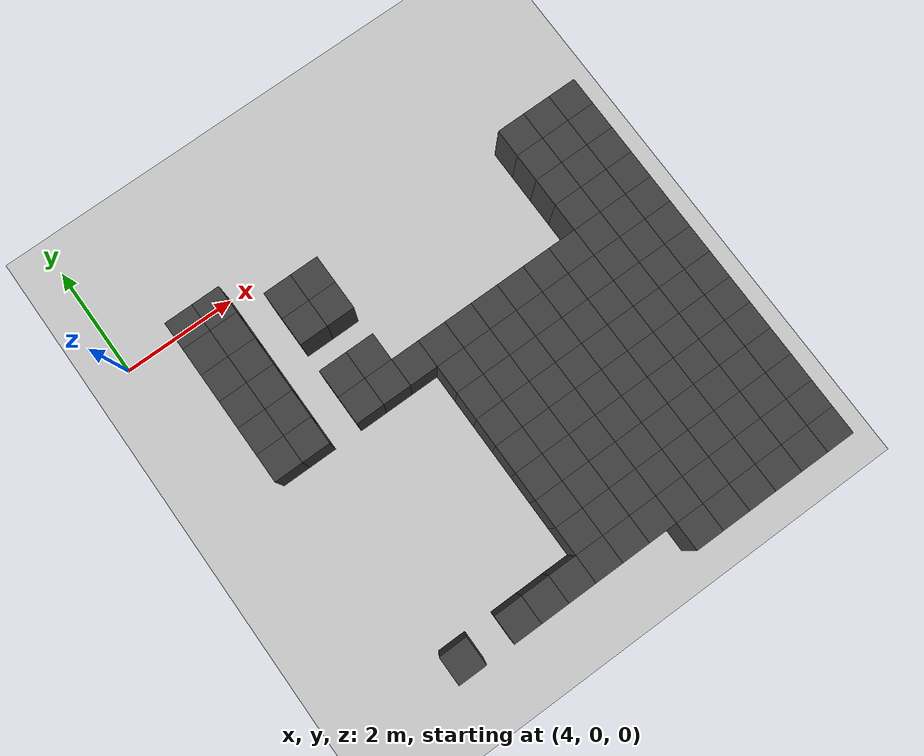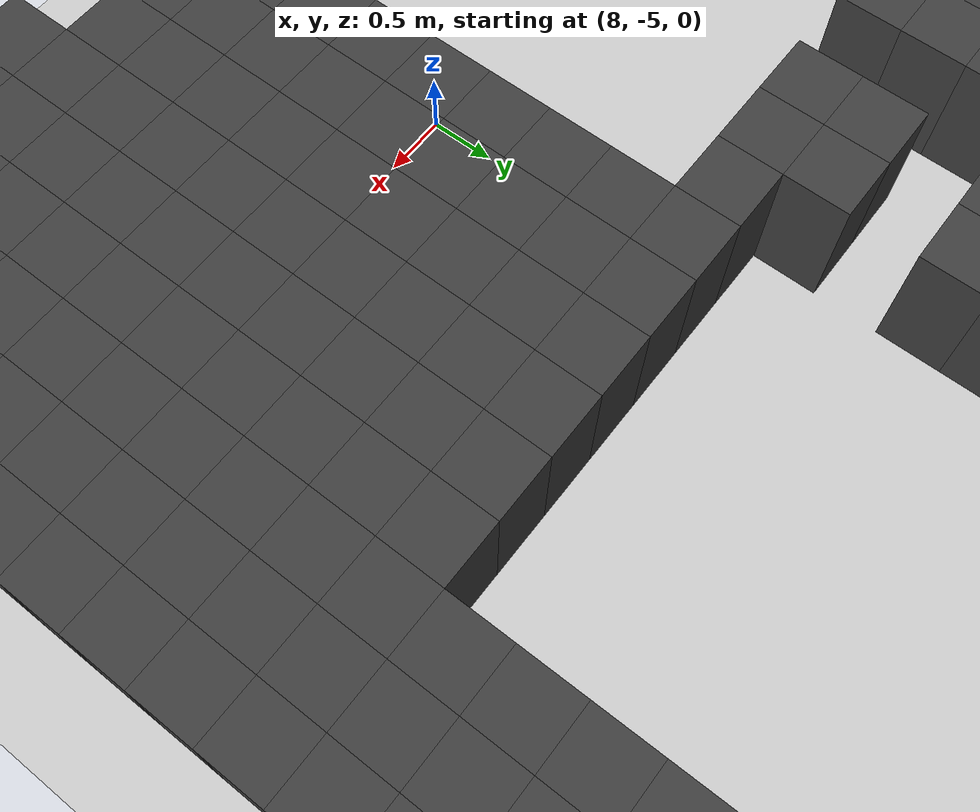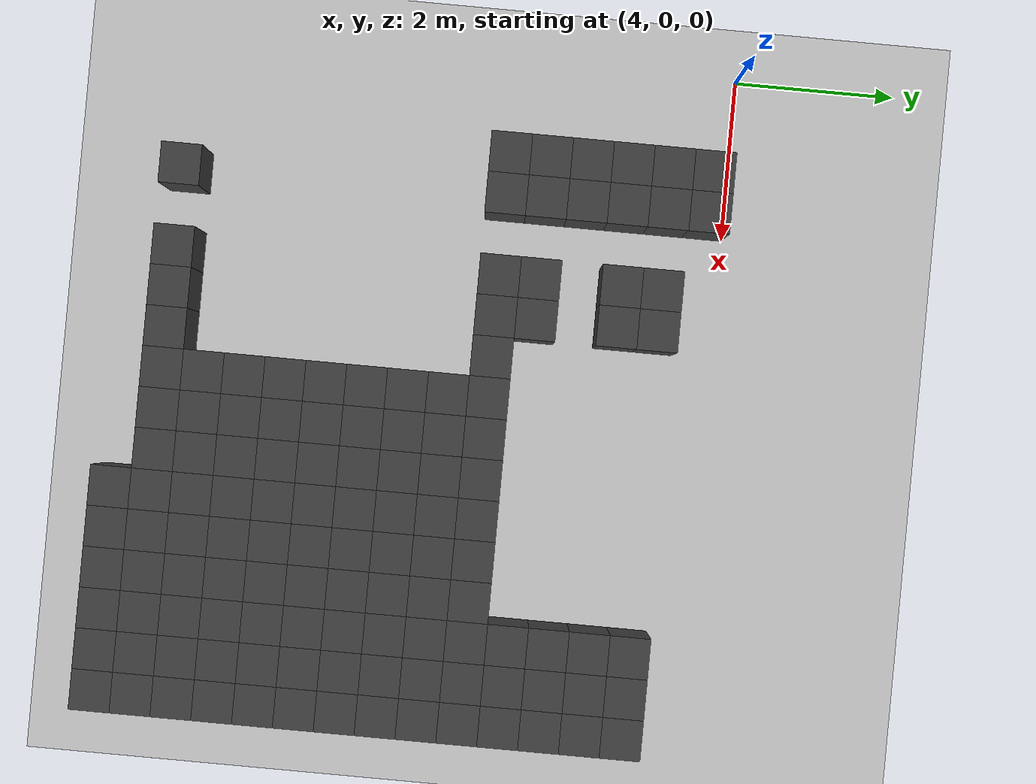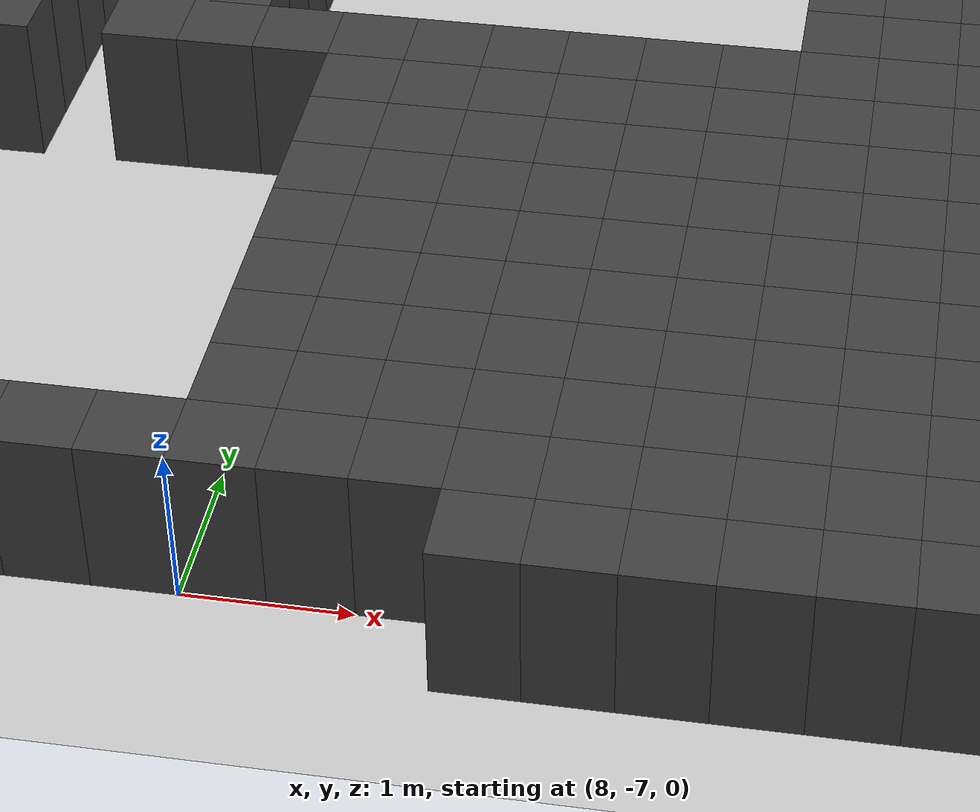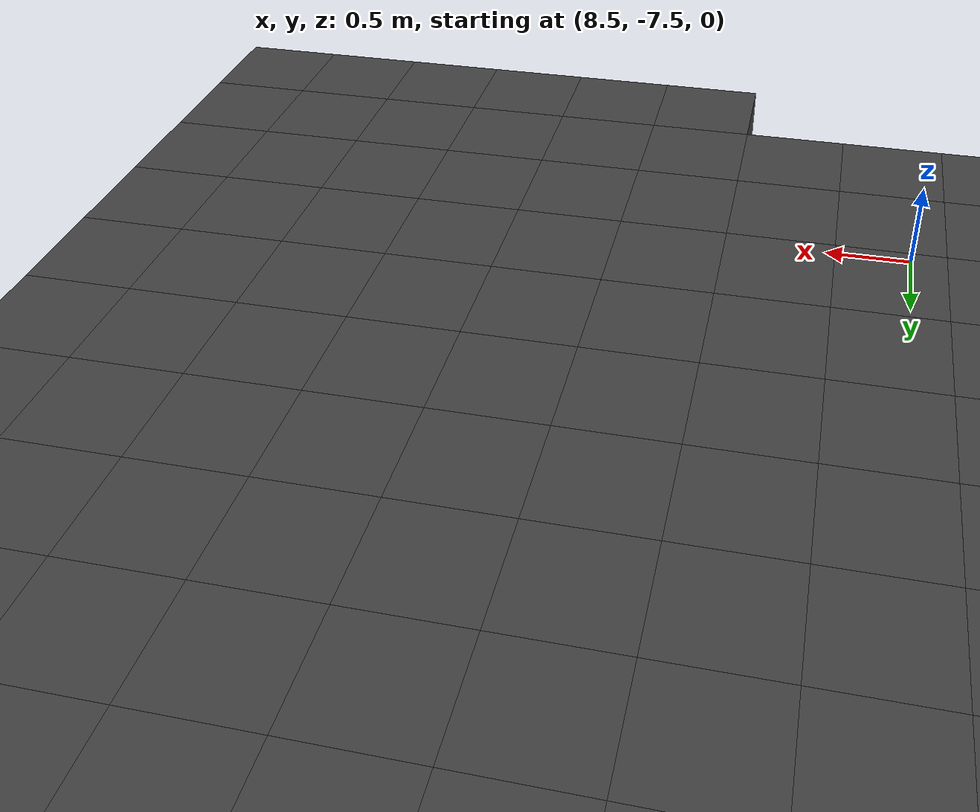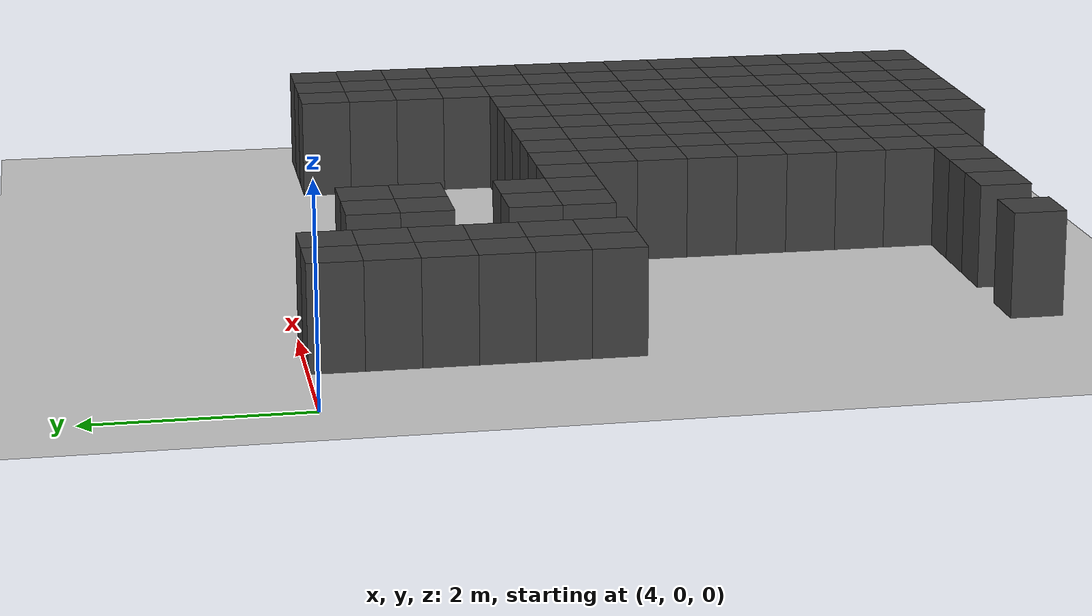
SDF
<sdf version="1.7">
 <world name="map_13820">
  <model name="ground_plane">
   <static>true</static>
   <link name="link">
    <collision name="collision">
     <geometry><plane><normal>0 0 1</normal><size>200 200</size></plane></geometry>
    </collision>
    <visual name="visual">
     <geometry><plane><normal>0 0 1</normal><size>200 200</size></plane></geometry>
     <material><ambient>0.8 0.8 0.8 1</ambient><diffuse>0.8 0.8 0.8 1</diffuse></material>
    </visual>
   </link>
  </model>
  <model name="maze_environment">
   <static>true</static>
   <link name="wall_906">
    <pose>5.250 -0.250 0.500 0 0 0</pose>
    <collision name="col"><geometry><box><size>0.5 0.5 1.0</size></box></geometry></collision>
    <visual name="vis">
     <geometry><box><size>0.5 0.5 1.0</size></box></geometry>
     <material><ambient>0.15 0.15 0.15 1</ambient><diffuse>0.25 0.25 0.25 1</diffuse></material>
    </visual>
   </link>
   <link name="wall_907">
    <pose>5.750 -0.250 0.500 0 0 0</pose>
    <collision name="col"><geometry><box><size>0.5 0.5 1.0</size></box></geometry></collision>
    <visual name="vis">
     <geometry><box><size>0.5 0.5 1.0</size></box></geometry>
     <material><ambient>0.15 0.15 0.15 1</ambient><diffuse>0.25 0.25 0.25 1</diffuse></material>
    </visual>
   </link>
   <link name="wall_946">
    <pose>5.250 -0.750 0.500 0 0 0</pose>
    <collision name="col"><geometry><box><size>0.5 0.5 1.0</size></box></geometry></collision>
    <visual name="vis">
     <geometry><box><size>0.5 0.5 1.0</size></box></geometry>
     <material><ambient>0.15 0.15 0.15 1</ambient><diffuse>0.25 0.25 0.25 1</diffuse></material>
    </visual>
   </link>
   <link name="wall_947">
    <pose>5.750 -0.750 0.500 0 0 0</pose>
    <collision name="col"><geometry><box><size>0.5 0.5 1.0</size></box></geometry></collision>
    <visual name="vis">
     <geometry><box><size>0.5 0.5 1.0</size></box></geometry>
     <material><ambient>0.15 0.15 0.15 1</ambient><diffuse>0.25 0.25 0.25 1</diffuse></material>
    </visual>
   </link>
   <link name="wall_948">
    <pose>6.750 -0.750 0.500 0 0 0</pose>
    <collision name="col"><geometry><box><size>0.5 0.5 1.0</size></box></geometry></collision>
    <visual name="vis">
     <geometry><box><size>0.5 0.5 1.0</size></box></geometry>
     <material><ambient>0.15 0.15 0.15 1</ambient><diffuse>0.25 0.25 0.25 1</diffuse></material>
    </visual>
   </link>
   <link name="wall_949">
    <pose>7.250 -0.750 0.500 0 0 0</pose>
    <collision name="col"><geometry><box><size>0.5 0.5 1.0</size></box></geometry></collision>
    <visual name="vis">
     <geometry><box><size>0.5 0.5 1.0</size></box></geometry>
     <material><ambient>0.15 0.15 0.15 1</ambient><diffuse>0.25 0.25 0.25 1</diffuse></material>
    </visual>
   </link>
   <link name="wall_950">
    <pose>11.250 -0.750 0.500 0 0 0</pose>
    <collision name="col"><geometry><box><size>0.5 0.5 1.0</size></box></geometry></collision>
    <visual name="vis">
     <geometry><box><size>0.5 0.5 1.0</size></box></geometry>
     <material><ambient>0.15 0.15 0.15 1</ambient><diffuse>0.25 0.25 0.25 1</diffuse></material>
    </visual>
   </link>
   <link name="wall_951">
    <pose>11.750 -0.750 0.500 0 0 0</pose>
    <collision name="col"><geometry><box><size>0.5 0.5 1.0</size></box></geometry></collision>
    <visual name="vis">
     <geometry><box><size>0.5 0.5 1.0</size></box></geometry>
     <material><ambient>0.15 0.15 0.15 1</ambient><diffuse>0.25 0.25 0.25 1</diffuse></material>
    </visual>
   </link>
   <link name="wall_952">
    <pose>12.250 -0.750 0.500 0 0 0</pose>
    <collision name="col"><geometry><box><size>0.5 0.5 1.0</size></box></geometry></collision>
    <visual name="vis">
     <geometry><box><size>0.5 0.5 1.0</size></box></geometry>
     <material><ambient>0.15 0.15 0.15 1</ambient><diffuse>0.25 0.25 0.25 1</diffuse></material>
    </visual>
   </link>
   <link name="wall_979">
    <pose>5.250 -1.250 0.500 0 0 0</pose>
    <collision name="col"><geometry><box><size>0.5 0.5 1.0</size></box></geometry></collision>
    <visual name="vis">
     <geometry><box><size>0.5 0.5 1.0</size></box></geometry>
     <material><ambient>0.15 0.15 0.15 1</ambient><diffuse>0.25 0.25 0.25 1</diffuse></material>
    </visual>
   </link>
   <link name="wall_980">
    <pose>5.750 -1.250 0.500 0 0 0</pose>
    <collision name="col"><geometry><box><size>0.5 0.5 1.0</size></box></geometry></collision>
    <visual name="vis">
     <geometry><box><size>0.5 0.5 1.0</size></box></geometry>
     <material><ambient>0.15 0.15 0.15 1</ambient><diffuse>0.25 0.25 0.25 1</diffuse></material>
    </visual>
   </link>
   <link name="wall_981">
    <pose>6.750 -1.250 0.500 0 0 0</pose>
    <collision name="col"><geometry><box><size>0.5 0.5 1.0</size></box></geometry></collision>
    <visual name="vis">
     <geometry><box><size>0.5 0.5 1.0</size></box></geometry>
     <material><ambient>0.15 0.15 0.15 1</ambient><diffuse>0.25 0.25 0.25 1</diffuse></material>
    </visual>
   </link>
   <link name="wall_982">
    <pose>7.250 -1.250 0.500 0 0 0</pose>
    <collision name="col"><geometry><box><size>0.5 0.5 1.0</size></box></geometry></collision>
    <visual name="vis">
     <geometry><box><size>0.5 0.5 1.0</size></box></geometry>
     <material><ambient>0.15 0.15 0.15 1</ambient><diffuse>0.25 0.25 0.25 1</diffuse></material>
    </visual>
   </link>
   <link name="wall_983">
    <pose>11.250 -1.250 0.500 0 0 0</pose>
    <collision name="col"><geometry><box><size>0.5 0.5 1.0</size></box></geometry></collision>
    <visual name="vis">
     <geometry><box><size>0.5 0.5 1.0</size></box></geometry>
     <material><ambient>0.15 0.15 0.15 1</ambient><diffuse>0.25 0.25 0.25 1</diffuse></material>
    </visual>
   </link>
   <link name="wall_984">
    <pose>11.750 -1.250 0.500 0 0 0</pose>
    <collision name="col"><geometry><box><size>0.5 0.5 1.0</size></box></geometry></collision>
    <visual name="vis">
     <geometry><box><size>0.5 0.5 1.0</size></box></geometry>
     <material><ambient>0.15 0.15 0.15 1</ambient><diffuse>0.25 0.25 0.25 1</diffuse></material>
    </visual>
   </link>
   <link name="wall_985">
    <pose>12.250 -1.250 0.500 0 0 0</pose>
    <collision name="col"><geometry><box><size>0.5 0.5 1.0</size></box></geometry></collision>
    <visual name="vis">
     <geometry><box><size>0.5 0.5 1.0</size></box></geometry>
     <material><ambient>0.15 0.15 0.15 1</ambient><diffuse>0.25 0.25 0.25 1</diffuse></material>
    </visual>
   </link>
   <link name="wall_1005">
    <pose>5.250 -1.750 0.500 0 0 0</pose>
    <collision name="col"><geometry><box><size>0.5 0.5 1.0</size></box></geometry></collision>
    <visual name="vis">
     <geometry><box><size>0.5 0.5 1.0</size></box></geometry>
     <material><ambient>0.15 0.15 0.15 1</ambient><diffuse>0.25 0.25 0.25 1</diffuse></material>
    </visual>
   </link>
   <link name="wall_1006">
    <pose>5.750 -1.750 0.500 0 0 0</pose>
    <collision name="col"><geometry><box><size>0.5 0.5 1.0</size></box></geometry></collision>
    <visual name="vis">
     <geometry><box><size>0.5 0.5 1.0</size></box></geometry>
     <material><ambient>0.15 0.15 0.15 1</ambient><diffuse>0.25 0.25 0.25 1</diffuse></material>
    </visual>
   </link>
   <link name="wall_1007">
    <pose>11.250 -1.750 0.500 0 0 0</pose>
    <collision name="col"><geometry><box><size>0.5 0.5 1.0</size></box></geometry></collision>
    <visual name="vis">
     <geometry><box><size>0.5 0.5 1.0</size></box></geometry>
     <material><ambient>0.15 0.15 0.15 1</ambient><diffuse>0.25 0.25 0.25 1</diffuse></material>
    </visual>
   </link>
   <link name="wall_1008">
    <pose>11.750 -1.750 0.500 0 0 0</pose>
    <collision name="col"><geometry><box><size>0.5 0.5 1.0</size></box></geometry></collision>
    <visual name="vis">
     <geometry><box><size>0.5 0.5 1.0</size></box></geometry>
     <material><ambient>0.15 0.15 0.15 1</ambient><diffuse>0.25 0.25 0.25 1</diffuse></material>
    </visual>
   </link>
   <link name="wall_1009">
    <pose>12.250 -1.750 0.500 0 0 0</pose>
    <collision name="col"><geometry><box><size>0.5 0.5 1.0</size></box></geometry></collision>
    <visual name="vis">
     <geometry><box><size>0.5 0.5 1.0</size></box></geometry>
     <material><ambient>0.15 0.15 0.15 1</ambient><diffuse>0.25 0.25 0.25 1</diffuse></material>
    </visual>
   </link>
   <link name="wall_1034">
    <pose>5.250 -2.250 0.500 0 0 0</pose>
    <collision name="col"><geometry><box><size>0.5 0.5 1.0</size></box></geometry></collision>
    <visual name="vis">
     <geometry><box><size>0.5 0.5 1.0</size></box></geometry>
     <material><ambient>0.15 0.15 0.15 1</ambient><diffuse>0.25 0.25 0.25 1</diffuse></material>
    </visual>
   </link>
   <link name="wall_1035">
    <pose>5.750 -2.250 0.500 0 0 0</pose>
    <collision name="col"><geometry><box><size>0.5 0.5 1.0</size></box></geometry></collision>
    <visual name="vis">
     <geometry><box><size>0.5 0.5 1.0</size></box></geometry>
     <material><ambient>0.15 0.15 0.15 1</ambient><diffuse>0.25 0.25 0.25 1</diffuse></material>
    </visual>
   </link>
   <link name="wall_1036">
    <pose>6.750 -2.250 0.500 0 0 0</pose>
    <collision name="col"><geometry><box><size>0.5 0.5 1.0</size></box></geometry></collision>
    <visual name="vis">
     <geometry><box><size>0.5 0.5 1.0</size></box></geometry>
     <material><ambient>0.15 0.15 0.15 1</ambient><diffuse>0.25 0.25 0.25 1</diffuse></material>
    </visual>
   </link>
   <link name="wall_1037">
    <pose>7.250 -2.250 0.500 0 0 0</pose>
    <collision name="col"><geometry><box><size>0.5 0.5 1.0</size></box></geometry></collision>
    <visual name="vis">
     <geometry><box><size>0.5 0.5 1.0</size></box></geometry>
     <material><ambient>0.15 0.15 0.15 1</ambient><diffuse>0.25 0.25 0.25 1</diffuse></material>
    </visual>
   </link>
   <link name="wall_1038">
    <pose>11.250 -2.250 0.500 0 0 0</pose>
    <collision name="col"><geometry><box><size>0.5 0.5 1.0</size></box></geometry></collision>
    <visual name="vis">
     <geometry><box><size>0.5 0.5 1.0</size></box></geometry>
     <material><ambient>0.15 0.15 0.15 1</ambient><diffuse>0.25 0.25 0.25 1</diffuse></material>
    </visual>
   </link>
   <link name="wall_1039">
    <pose>11.750 -2.250 0.500 0 0 0</pose>
    <collision name="col"><geometry><box><size>0.5 0.5 1.0</size></box></geometry></collision>
    <visual name="vis">
     <geometry><box><size>0.5 0.5 1.0</size></box></geometry>
     <material><ambient>0.15 0.15 0.15 1</ambient><diffuse>0.25 0.25 0.25 1</diffuse></material>
    </visual>
   </link>
   <link name="wall_1040">
    <pose>12.250 -2.250 0.500 0 0 0</pose>
    <collision name="col"><geometry><box><size>0.5 0.5 1.0</size></box></geometry></collision>
    <visual name="vis">
     <geometry><box><size>0.5 0.5 1.0</size></box></geometry>
     <material><ambient>0.15 0.15 0.15 1</ambient><diffuse>0.25 0.25 0.25 1</diffuse></material>
    </visual>
   </link>
   <link name="wall_1065">
    <pose>5.250 -2.750 0.500 0 0 0</pose>
    <collision name="col"><geometry><box><size>0.5 0.5 1.0</size></box></geometry></collision>
    <visual name="vis">
     <geometry><box><size>0.5 0.5 1.0</size></box></geometry>
     <material><ambient>0.15 0.15 0.15 1</ambient><diffuse>0.25 0.25 0.25 1</diffuse></material>
    </visual>
   </link>
   <link name="wall_1066">
    <pose>5.750 -2.750 0.500 0 0 0</pose>
    <collision name="col"><geometry><box><size>0.5 0.5 1.0</size></box></geometry></collision>
    <visual name="vis">
     <geometry><box><size>0.5 0.5 1.0</size></box></geometry>
     <material><ambient>0.15 0.15 0.15 1</ambient><diffuse>0.25 0.25 0.25 1</diffuse></material>
    </visual>
   </link>
   <link name="wall_1067">
    <pose>6.750 -2.750 0.500 0 0 0</pose>
    <collision name="col"><geometry><box><size>0.5 0.5 1.0</size></box></geometry></collision>
    <visual name="vis">
     <geometry><box><size>0.5 0.5 1.0</size></box></geometry>
     <material><ambient>0.15 0.15 0.15 1</ambient><diffuse>0.25 0.25 0.25 1</diffuse></material>
    </visual>
   </link>
   <link name="wall_1068">
    <pose>7.250 -2.750 0.500 0 0 0</pose>
    <collision name="col"><geometry><box><size>0.5 0.5 1.0</size></box></geometry></collision>
    <visual name="vis">
     <geometry><box><size>0.5 0.5 1.0</size></box></geometry>
     <material><ambient>0.15 0.15 0.15 1</ambient><diffuse>0.25 0.25 0.25 1</diffuse></material>
    </visual>
   </link>
   <link name="wall_1069">
    <pose>7.750 -2.750 0.500 0 0 0</pose>
    <collision name="col"><geometry><box><size>0.5 0.5 1.0</size></box></geometry></collision>
    <visual name="vis">
     <geometry><box><size>0.5 0.5 1.0</size></box></geometry>
     <material><ambient>0.15 0.15 0.15 1</ambient><diffuse>0.25 0.25 0.25 1</diffuse></material>
    </visual>
   </link>
   <link name="wall_1070">
    <pose>8.250 -2.750 0.500 0 0 0</pose>
    <collision name="col"><geometry><box><size>0.5 0.5 1.0</size></box></geometry></collision>
    <visual name="vis">
     <geometry><box><size>0.5 0.5 1.0</size></box></geometry>
     <material><ambient>0.15 0.15 0.15 1</ambient><diffuse>0.25 0.25 0.25 1</diffuse></material>
    </visual>
   </link>
   <link name="wall_1071">
    <pose>8.750 -2.750 0.500 0 0 0</pose>
    <collision name="col"><geometry><box><size>0.5 0.5 1.0</size></box></geometry></collision>
    <visual name="vis">
     <geometry><box><size>0.5 0.5 1.0</size></box></geometry>
     <material><ambient>0.15 0.15 0.15 1</ambient><diffuse>0.25 0.25 0.25 1</diffuse></material>
    </visual>
   </link>
   <link name="wall_1072">
    <pose>9.250 -2.750 0.500 0 0 0</pose>
    <collision name="col"><geometry><box><size>0.5 0.5 1.0</size></box></geometry></collision>
    <visual name="vis">
     <geometry><box><size>0.5 0.5 1.0</size></box></geometry>
     <material><ambient>0.15 0.15 0.15 1</ambient><diffuse>0.25 0.25 0.25 1</diffuse></material>
    </visual>
   </link>
   <link name="wall_1073">
    <pose>9.750 -2.750 0.500 0 0 0</pose>
    <collision name="col"><geometry><box><size>0.5 0.5 1.0</size></box></geometry></collision>
    <visual name="vis">
     <geometry><box><size>0.5 0.5 1.0</size></box></geometry>
     <material><ambient>0.15 0.15 0.15 1</ambient><diffuse>0.25 0.25 0.25 1</diffuse></material>
    </visual>
   </link>
   <link name="wall_1074">
    <pose>10.250 -2.750 0.500 0 0 0</pose>
    <collision name="col"><geometry><box><size>0.5 0.5 1.0</size></box></geometry></collision>
    <visual name="vis">
     <geometry><box><size>0.5 0.5 1.0</size></box></geometry>
     <material><ambient>0.15 0.15 0.15 1</ambient><diffuse>0.25 0.25 0.25 1</diffuse></material>
    </visual>
   </link>
   <link name="wall_1075">
    <pose>10.750 -2.750 0.500 0 0 0</pose>
    <collision name="col"><geometry><box><size>0.5 0.5 1.0</size></box></geometry></collision>
    <visual name="vis">
     <geometry><box><size>0.5 0.5 1.0</size></box></geometry>
     <material><ambient>0.15 0.15 0.15 1</ambient><diffuse>0.25 0.25 0.25 1</diffuse></material>
    </visual>
   </link>
   <link name="wall_1076">
    <pose>11.250 -2.750 0.500 0 0 0</pose>
    <collision name="col"><geometry><box><size>0.5 0.5 1.0</size></box></geometry></collision>
    <visual name="vis">
     <geometry><box><size>0.5 0.5 1.0</size></box></geometry>
     <material><ambient>0.15 0.15 0.15 1</ambient><diffuse>0.25 0.25 0.25 1</diffuse></material>
    </visual>
   </link>
   <link name="wall_1077">
    <pose>11.750 -2.750 0.500 0 0 0</pose>
    <collision name="col"><geometry><box><size>0.5 0.5 1.0</size></box></geometry></collision>
    <visual name="vis">
     <geometry><box><size>0.5 0.5 1.0</size></box></geometry>
     <material><ambient>0.15 0.15 0.15 1</ambient><diffuse>0.25 0.25 0.25 1</diffuse></material>
    </visual>
   </link>
   <link name="wall_1078">
    <pose>12.250 -2.750 0.500 0 0 0</pose>
    <collision name="col"><geometry><box><size>0.5 0.5 1.0</size></box></geometry></collision>
    <visual name="vis">
     <geometry><box><size>0.5 0.5 1.0</size></box></geometry>
     <material><ambient>0.15 0.15 0.15 1</ambient><diffuse>0.25 0.25 0.25 1</diffuse></material>
    </visual>
   </link>
   <link name="wall_1103">
    <pose>8.250 -3.250 0.500 0 0 0</pose>
    <collision name="col"><geometry><box><size>0.5 0.5 1.0</size></box></geometry></collision>
    <visual name="vis">
     <geometry><box><size>0.5 0.5 1.0</size></box></geometry>
     <material><ambient>0.15 0.15 0.15 1</ambient><diffuse>0.25 0.25 0.25 1</diffuse></material>
    </visual>
   </link>
   <link name="wall_1104">
    <pose>8.750 -3.250 0.500 0 0 0</pose>
    <collision name="col"><geometry><box><size>0.5 0.5 1.0</size></box></geometry></collision>
    <visual name="vis">
     <geometry><box><size>0.5 0.5 1.0</size></box></geometry>
     <material><ambient>0.15 0.15 0.15 1</ambient><diffuse>0.25 0.25 0.25 1</diffuse></material>
    </visual>
   </link>
   <link name="wall_1105">
    <pose>9.250 -3.250 0.500 0 0 0</pose>
    <collision name="col"><geometry><box><size>0.5 0.5 1.0</size></box></geometry></collision>
    <visual name="vis">
     <geometry><box><size>0.5 0.5 1.0</size></box></geometry>
     <material><ambient>0.15 0.15 0.15 1</ambient><diffuse>0.25 0.25 0.25 1</diffuse></material>
    </visual>
   </link>
   <link name="wall_1106">
    <pose>9.750 -3.250 0.500 0 0 0</pose>
    <collision name="col"><geometry><box><size>0.5 0.5 1.0</size></box></geometry></collision>
    <visual name="vis">
     <geometry><box><size>0.5 0.5 1.0</size></box></geometry>
     <material><ambient>0.15 0.15 0.15 1</ambient><diffuse>0.25 0.25 0.25 1</diffuse></material>
    </visual>
   </link>
   <link name="wall_1107">
    <pose>10.250 -3.250 0.500 0 0 0</pose>
    <collision name="col"><geometry><box><size>0.5 0.5 1.0</size></box></geometry></collision>
    <visual name="vis">
     <geometry><box><size>0.5 0.5 1.0</size></box></geometry>
     <material><ambient>0.15 0.15 0.15 1</ambient><diffuse>0.25 0.25 0.25 1</diffuse></material>
    </visual>
   </link>
   <link name="wall_1108">
    <pose>10.750 -3.250 0.500 0 0 0</pose>
    <collision name="col"><geometry><box><size>0.5 0.5 1.0</size></box></geometry></collision>
    <visual name="vis">
     <geometry><box><size>0.5 0.5 1.0</size></box></geometry>
     <material><ambient>0.15 0.15 0.15 1</ambient><diffuse>0.25 0.25 0.25 1</diffuse></material>
    </visual>
   </link>
   <link name="wall_1109">
    <pose>11.250 -3.250 0.500 0 0 0</pose>
    <collision name="col"><geometry><box><size>0.5 0.5 1.0</size></box></geometry></collision>
    <visual name="vis">
     <geometry><box><size>0.5 0.5 1.0</size></box></geometry>
     <material><ambient>0.15 0.15 0.15 1</ambient><diffuse>0.25 0.25 0.25 1</diffuse></material>
    </visual>
   </link>
   <link name="wall_1110">
    <pose>11.750 -3.250 0.500 0 0 0</pose>
    <collision name="col"><geometry><box><size>0.5 0.5 1.0</size></box></geometry></collision>
    <visual name="vis">
     <geometry><box><size>0.5 0.5 1.0</size></box></geometry>
     <material><ambient>0.15 0.15 0.15 1</ambient><diffuse>0.25 0.25 0.25 1</diffuse></material>
    </visual>
   </link>
   <link name="wall_1111">
    <pose>12.250 -3.250 0.500 0 0 0</pose>
    <collision name="col"><geometry><box><size>0.5 0.5 1.0</size></box></geometry></collision>
    <visual name="vis">
     <geometry><box><size>0.5 0.5 1.0</size></box></geometry>
     <material><ambient>0.15 0.15 0.15 1</ambient><diffuse>0.25 0.25 0.25 1</diffuse></material>
    </visual>
   </link>
   <link name="wall_1130">
    <pose>8.250 -3.750 0.500 0 0 0</pose>
    <collision name="col"><geometry><box><size>0.5 0.5 1.0</size></box></geometry></collision>
    <visual name="vis">
     <geometry><box><size>0.5 0.5 1.0</size></box></geometry>
     <material><ambient>0.15 0.15 0.15 1</ambient><diffuse>0.25 0.25 0.25 1</diffuse></material>
    </visual>
   </link>
   <link name="wall_1131">
    <pose>8.750 -3.750 0.500 0 0 0</pose>
    <collision name="col"><geometry><box><size>0.5 0.5 1.0</size></box></geometry></collision>
    <visual name="vis">
     <geometry><box><size>0.5 0.5 1.0</size></box></geometry>
     <material><ambient>0.15 0.15 0.15 1</ambient><diffuse>0.25 0.25 0.25 1</diffuse></material>
    </visual>
   </link>
   <link name="wall_1132">
    <pose>9.250 -3.750 0.500 0 0 0</pose>
    <collision name="col"><geometry><box><size>0.5 0.5 1.0</size></box></geometry></collision>
    <visual name="vis">
     <geometry><box><size>0.5 0.5 1.0</size></box></geometry>
     <material><ambient>0.15 0.15 0.15 1</ambient><diffuse>0.25 0.25 0.25 1</diffuse></material>
    </visual>
   </link>
   <link name="wall_1133">
    <pose>9.750 -3.750 0.500 0 0 0</pose>
    <collision name="col"><geometry><box><size>0.5 0.5 1.0</size></box></geometry></collision>
    <visual name="vis">
     <geometry><box><size>0.5 0.5 1.0</size></box></geometry>
     <material><ambient>0.15 0.15 0.15 1</ambient><diffuse>0.25 0.25 0.25 1</diffuse></material>
    </visual>
   </link>
   <link name="wall_1134">
    <pose>10.250 -3.750 0.500 0 0 0</pose>
    <collision name="col"><geometry><box><size>0.5 0.5 1.0</size></box></geometry></collision>
    <visual name="vis">
     <geometry><box><size>0.5 0.5 1.0</size></box></geometry>
     <material><ambient>0.15 0.15 0.15 1</ambient><diffuse>0.25 0.25 0.25 1</diffuse></material>
    </visual>
   </link>
   <link name="wall_1135">
    <pose>10.750 -3.750 0.500 0 0 0</pose>
    <collision name="col"><geometry><box><size>0.5 0.5 1.0</size></box></geometry></collision>
    <visual name="vis">
     <geometry><box><size>0.5 0.5 1.0</size></box></geometry>
     <material><ambient>0.15 0.15 0.15 1</ambient><diffuse>0.25 0.25 0.25 1</diffuse></material>
    </visual>
   </link>
   <link name="wall_1136">
    <pose>11.250 -3.750 0.500 0 0 0</pose>
    <collision name="col"><geometry><box><size>0.5 0.5 1.0</size></box></geometry></collision>
    <visual name="vis">
     <geometry><box><size>0.5 0.5 1.0</size></box></geometry>
     <material><ambient>0.15 0.15 0.15 1</ambient><diffuse>0.25 0.25 0.25 1</diffuse></material>
    </visual>
   </link>
   <link name="wall_1137">
    <pose>11.750 -3.750 0.500 0 0 0</pose>
    <collision name="col"><geometry><box><size>0.5 0.5 1.0</size></box></geometry></collision>
    <visual name="vis">
     <geometry><box><size>0.5 0.5 1.0</size></box></geometry>
     <material><ambient>0.15 0.15 0.15 1</ambient><diffuse>0.25 0.25 0.25 1</diffuse></material>
    </visual>
   </link>
   <link name="wall_1138">
    <pose>12.250 -3.750 0.500 0 0 0</pose>
    <collision name="col"><geometry><box><size>0.5 0.5 1.0</size></box></geometry></collision>
    <visual name="vis">
     <geometry><box><size>0.5 0.5 1.0</size></box></geometry>
     <material><ambient>0.15 0.15 0.15 1</ambient><diffuse>0.25 0.25 0.25 1</diffuse></material>
    </visual>
   </link>
   <link name="wall_1157">
    <pose>8.250 -4.250 0.500 0 0 0</pose>
    <collision name="col"><geometry><box><size>0.5 0.5 1.0</size></box></geometry></collision>
    <visual name="vis">
     <geometry><box><size>0.5 0.5 1.0</size></box></geometry>
     <material><ambient>0.15 0.15 0.15 1</ambient><diffuse>0.25 0.25 0.25 1</diffuse></material>
    </visual>
   </link>
   <link name="wall_1158">
    <pose>8.750 -4.250 0.500 0 0 0</pose>
    <collision name="col"><geometry><box><size>0.5 0.5 1.0</size></box></geometry></collision>
    <visual name="vis">
     <geometry><box><size>0.5 0.5 1.0</size></box></geometry>
     <material><ambient>0.15 0.15 0.15 1</ambient><diffuse>0.25 0.25 0.25 1</diffuse></material>
    </visual>
   </link>
   <link name="wall_1159">
    <pose>9.250 -4.250 0.500 0 0 0</pose>
    <collision name="col"><geometry><box><size>0.5 0.5 1.0</size></box></geometry></collision>
    <visual name="vis">
     <geometry><box><size>0.5 0.5 1.0</size></box></geometry>
     <material><ambient>0.15 0.15 0.15 1</ambient><diffuse>0.25 0.25 0.25 1</diffuse></material>
    </visual>
   </link>
   <link name="wall_1160">
    <pose>9.750 -4.250 0.500 0 0 0</pose>
    <collision name="col"><geometry><box><size>0.5 0.5 1.0</size></box></geometry></collision>
    <visual name="vis">
     <geometry><box><size>0.5 0.5 1.0</size></box></geometry>
     <material><ambient>0.15 0.15 0.15 1</ambient><diffuse>0.25 0.25 0.25 1</diffuse></material>
    </visual>
   </link>
   <link name="wall_1161">
    <pose>10.250 -4.250 0.500 0 0 0</pose>
    <collision name="col"><geometry><box><size>0.5 0.5 1.0</size></box></geometry></collision>
    <visual name="vis">
     <geometry><box><size>0.5 0.5 1.0</size></box></geometry>
     <material><ambient>0.15 0.15 0.15 1</ambient><diffuse>0.25 0.25 0.25 1</diffuse></material>
    </visual>
   </link>
   <link name="wall_1162">
    <pose>10.750 -4.250 0.500 0 0 0</pose>
    <collision name="col"><geometry><box><size>0.5 0.5 1.0</size></box></geometry></collision>
    <visual name="vis">
     <geometry><box><size>0.5 0.5 1.0</size></box></geometry>
     <material><ambient>0.15 0.15 0.15 1</ambient><diffuse>0.25 0.25 0.25 1</diffuse></material>
    </visual>
   </link>
   <link name="wall_1163">
    <pose>11.250 -4.250 0.500 0 0 0</pose>
    <collision name="col"><geometry><box><size>0.5 0.5 1.0</size></box></geometry></collision>
    <visual name="vis">
     <geometry><box><size>0.5 0.5 1.0</size></box></geometry>
     <material><ambient>0.15 0.15 0.15 1</ambient><diffuse>0.25 0.25 0.25 1</diffuse></material>
    </visual>
   </link>
   <link name="wall_1164">
    <pose>11.750 -4.250 0.500 0 0 0</pose>
    <collision name="col"><geometry><box><size>0.5 0.5 1.0</size></box></geometry></collision>
    <visual name="vis">
     <geometry><box><size>0.5 0.5 1.0</size></box></geometry>
     <material><ambient>0.15 0.15 0.15 1</ambient><diffuse>0.25 0.25 0.25 1</diffuse></material>
    </visual>
   </link>
   <link name="wall_1165">
    <pose>12.250 -4.250 0.500 0 0 0</pose>
    <collision name="col"><geometry><box><size>0.5 0.5 1.0</size></box></geometry></collision>
    <visual name="vis">
     <geometry><box><size>0.5 0.5 1.0</size></box></geometry>
     <material><ambient>0.15 0.15 0.15 1</ambient><diffuse>0.25 0.25 0.25 1</diffuse></material>
    </visual>
   </link>
   <link name="wall_1184">
    <pose>8.250 -4.750 0.500 0 0 0</pose>
    <collision name="col"><geometry><box><size>0.5 0.5 1.0</size></box></geometry></collision>
    <visual name="vis">
     <geometry><box><size>0.5 0.5 1.0</size></box></geometry>
     <material><ambient>0.15 0.15 0.15 1</ambient><diffuse>0.25 0.25 0.25 1</diffuse></material>
    </visual>
   </link>
   <link name="wall_1185">
    <pose>8.750 -4.750 0.500 0 0 0</pose>
    <collision name="col"><geometry><box><size>0.5 0.5 1.0</size></box></geometry></collision>
    <visual name="vis">
     <geometry><box><size>0.5 0.5 1.0</size></box></geometry>
     <material><ambient>0.15 0.15 0.15 1</ambient><diffuse>0.25 0.25 0.25 1</diffuse></material>
    </visual>
   </link>
   <link name="wall_1186">
    <pose>9.250 -4.750 0.500 0 0 0</pose>
    <collision name="col"><geometry><box><size>0.5 0.5 1.0</size></box></geometry></collision>
    <visual name="vis">
     <geometry><box><size>0.5 0.5 1.0</size></box></geometry>
     <material><ambient>0.15 0.15 0.15 1</ambient><diffuse>0.25 0.25 0.25 1</diffuse></material>
    </visual>
   </link>
   <link name="wall_1187">
    <pose>9.750 -4.750 0.500 0 0 0</pose>
    <collision name="col"><geometry><box><size>0.5 0.5 1.0</size></box></geometry></collision>
    <visual name="vis">
     <geometry><box><size>0.5 0.5 1.0</size></box></geometry>
     <material><ambient>0.15 0.15 0.15 1</ambient><diffuse>0.25 0.25 0.25 1</diffuse></material>
    </visual>
   </link>
   <link name="wall_1188">
    <pose>10.250 -4.750 0.500 0 0 0</pose>
    <collision name="col"><geometry><box><size>0.5 0.5 1.0</size></box></geometry></collision>
    <visual name="vis">
     <geometry><box><size>0.5 0.5 1.0</size></box></geometry>
     <material><ambient>0.15 0.15 0.15 1</ambient><diffuse>0.25 0.25 0.25 1</diffuse></material>
    </visual>
   </link>
   <link name="wall_1189">
    <pose>10.750 -4.750 0.500 0 0 0</pose>
    <collision name="col"><geometry><box><size>0.5 0.5 1.0</size></box></geometry></collision>
    <visual name="vis">
     <geometry><box><size>0.5 0.5 1.0</size></box></geometry>
     <material><ambient>0.15 0.15 0.15 1</ambient><diffuse>0.25 0.25 0.25 1</diffuse></material>
    </visual>
   </link>
   <link name="wall_1190">
    <pose>11.250 -4.750 0.500 0 0 0</pose>
    <collision name="col"><geometry><box><size>0.5 0.5 1.0</size></box></geometry></collision>
    <visual name="vis">
     <geometry><box><size>0.5 0.5 1.0</size></box></geometry>
     <material><ambient>0.15 0.15 0.15 1</ambient><diffuse>0.25 0.25 0.25 1</diffuse></material>
    </visual>
   </link>
   <link name="wall_1191">
    <pose>11.750 -4.750 0.500 0 0 0</pose>
    <collision name="col"><geometry><box><size>0.5 0.5 1.0</size></box></geometry></collision>
    <visual name="vis">
     <geometry><box><size>0.5 0.5 1.0</size></box></geometry>
     <material><ambient>0.15 0.15 0.15 1</ambient><diffuse>0.25 0.25 0.25 1</diffuse></material>
    </visual>
   </link>
   <link name="wall_1192">
    <pose>12.250 -4.750 0.500 0 0 0</pose>
    <collision name="col"><geometry><box><size>0.5 0.5 1.0</size></box></geometry></collision>
    <visual name="vis">
     <geometry><box><size>0.5 0.5 1.0</size></box></geometry>
     <material><ambient>0.15 0.15 0.15 1</ambient><diffuse>0.25 0.25 0.25 1</diffuse></material>
    </visual>
   </link>
   <link name="wall_1219">
    <pose>8.250 -5.250 0.500 0 0 0</pose>
    <collision name="col"><geometry><box><size>0.5 0.5 1.0</size></box></geometry></collision>
    <visual name="vis">
     <geometry><box><size>0.5 0.5 1.0</size></box></geometry>
     <material><ambient>0.15 0.15 0.15 1</ambient><diffuse>0.25 0.25 0.25 1</diffuse></material>
    </visual>
   </link>
   <link name="wall_1220">
    <pose>8.750 -5.250 0.500 0 0 0</pose>
    <collision name="col"><geometry><box><size>0.5 0.5 1.0</size></box></geometry></collision>
    <visual name="vis">
     <geometry><box><size>0.5 0.5 1.0</size></box></geometry>
     <material><ambient>0.15 0.15 0.15 1</ambient><diffuse>0.25 0.25 0.25 1</diffuse></material>
    </visual>
   </link>
   <link name="wall_1221">
    <pose>9.250 -5.250 0.500 0 0 0</pose>
    <collision name="col"><geometry><box><size>0.5 0.5 1.0</size></box></geometry></collision>
    <visual name="vis">
     <geometry><box><size>0.5 0.5 1.0</size></box></geometry>
     <material><ambient>0.15 0.15 0.15 1</ambient><diffuse>0.25 0.25 0.25 1</diffuse></material>
    </visual>
   </link>
   <link name="wall_1222">
    <pose>9.750 -5.250 0.500 0 0 0</pose>
    <collision name="col"><geometry><box><size>0.5 0.5 1.0</size></box></geometry></collision>
    <visual name="vis">
     <geometry><box><size>0.5 0.5 1.0</size></box></geometry>
     <material><ambient>0.15 0.15 0.15 1</ambient><diffuse>0.25 0.25 0.25 1</diffuse></material>
    </visual>
   </link>
   <link name="wall_1223">
    <pose>10.250 -5.250 0.500 0 0 0</pose>
    <collision name="col"><geometry><box><size>0.5 0.5 1.0</size></box></geometry></collision>
    <visual name="vis">
     <geometry><box><size>0.5 0.5 1.0</size></box></geometry>
     <material><ambient>0.15 0.15 0.15 1</ambient><diffuse>0.25 0.25 0.25 1</diffuse></material>
    </visual>
   </link>
   <link name="wall_1224">
    <pose>10.750 -5.250 0.500 0 0 0</pose>
    <collision name="col"><geometry><box><size>0.5 0.5 1.0</size></box></geometry></collision>
    <visual name="vis">
     <geometry><box><size>0.5 0.5 1.0</size></box></geometry>
     <material><ambient>0.15 0.15 0.15 1</ambient><diffuse>0.25 0.25 0.25 1</diffuse></material>
    </visual>
   </link>
   <link name="wall_1225">
    <pose>11.250 -5.250 0.500 0 0 0</pose>
    <collision name="col"><geometry><box><size>0.5 0.5 1.0</size></box></geometry></collision>
    <visual name="vis">
     <geometry><box><size>0.5 0.5 1.0</size></box></geometry>
     <material><ambient>0.15 0.15 0.15 1</ambient><diffuse>0.25 0.25 0.25 1</diffuse></material>
    </visual>
   </link>
   <link name="wall_1226">
    <pose>11.750 -5.250 0.500 0 0 0</pose>
    <collision name="col"><geometry><box><size>0.5 0.5 1.0</size></box></geometry></collision>
    <visual name="vis">
     <geometry><box><size>0.5 0.5 1.0</size></box></geometry>
     <material><ambient>0.15 0.15 0.15 1</ambient><diffuse>0.25 0.25 0.25 1</diffuse></material>
    </visual>
   </link>
   <link name="wall_1227">
    <pose>12.250 -5.250 0.500 0 0 0</pose>
    <collision name="col"><geometry><box><size>0.5 0.5 1.0</size></box></geometry></collision>
    <visual name="vis">
     <geometry><box><size>0.5 0.5 1.0</size></box></geometry>
     <material><ambient>0.15 0.15 0.15 1</ambient><diffuse>0.25 0.25 0.25 1</diffuse></material>
    </visual>
   </link>
   <link name="wall_1254">
    <pose>8.250 -5.750 0.500 0 0 0</pose>
    <collision name="col"><geometry><box><size>0.5 0.5 1.0</size></box></geometry></collision>
    <visual name="vis">
     <geometry><box><size>0.5 0.5 1.0</size></box></geometry>
     <material><ambient>0.15 0.15 0.15 1</ambient><diffuse>0.25 0.25 0.25 1</diffuse></material>
    </visual>
   </link>
   <link name="wall_1255">
    <pose>8.750 -5.750 0.500 0 0 0</pose>
    <collision name="col"><geometry><box><size>0.5 0.5 1.0</size></box></geometry></collision>
    <visual name="vis">
     <geometry><box><size>0.5 0.5 1.0</size></box></geometry>
     <material><ambient>0.15 0.15 0.15 1</ambient><diffuse>0.25 0.25 0.25 1</diffuse></material>
    </visual>
   </link>
   <link name="wall_1256">
    <pose>9.250 -5.750 0.500 0 0 0</pose>
    <collision name="col"><geometry><box><size>0.5 0.5 1.0</size></box></geometry></collision>
    <visual name="vis">
     <geometry><box><size>0.5 0.5 1.0</size></box></geometry>
     <material><ambient>0.15 0.15 0.15 1</ambient><diffuse>0.25 0.25 0.25 1</diffuse></material>
    </visual>
   </link>
   <link name="wall_1257">
    <pose>9.750 -5.750 0.500 0 0 0</pose>
    <collision name="col"><geometry><box><size>0.5 0.5 1.0</size></box></geometry></collision>
    <visual name="vis">
     <geometry><box><size>0.5 0.5 1.0</size></box></geometry>
     <material><ambient>0.15 0.15 0.15 1</ambient><diffuse>0.25 0.25 0.25 1</diffuse></material>
    </visual>
   </link>
   <link name="wall_1258">
    <pose>10.250 -5.750 0.500 0 0 0</pose>
    <collision name="col"><geometry><box><size>0.5 0.5 1.0</size></box></geometry></collision>
    <visual name="vis">
     <geometry><box><size>0.5 0.5 1.0</size></box></geometry>
     <material><ambient>0.15 0.15 0.15 1</ambient><diffuse>0.25 0.25 0.25 1</diffuse></material>
    </visual>
   </link>
   <link name="wall_1259">
    <pose>10.750 -5.750 0.500 0 0 0</pose>
    <collision name="col"><geometry><box><size>0.5 0.5 1.0</size></box></geometry></collision>
    <visual name="vis">
     <geometry><box><size>0.5 0.5 1.0</size></box></geometry>
     <material><ambient>0.15 0.15 0.15 1</ambient><diffuse>0.25 0.25 0.25 1</diffuse></material>
    </visual>
   </link>
   <link name="wall_1260">
    <pose>11.250 -5.750 0.500 0 0 0</pose>
    <collision name="col"><geometry><box><size>0.5 0.5 1.0</size></box></geometry></collision>
    <visual name="vis">
     <geometry><box><size>0.5 0.5 1.0</size></box></geometry>
     <material><ambient>0.15 0.15 0.15 1</ambient><diffuse>0.25 0.25 0.25 1</diffuse></material>
    </visual>
   </link>
   <link name="wall_1261">
    <pose>11.750 -5.750 0.500 0 0 0</pose>
    <collision name="col"><geometry><box><size>0.5 0.5 1.0</size></box></geometry></collision>
    <visual name="vis">
     <geometry><box><size>0.5 0.5 1.0</size></box></geometry>
     <material><ambient>0.15 0.15 0.15 1</ambient><diffuse>0.25 0.25 0.25 1</diffuse></material>
    </visual>
   </link>
   <link name="wall_1262">
    <pose>12.250 -5.750 0.500 0 0 0</pose>
    <collision name="col"><geometry><box><size>0.5 0.5 1.0</size></box></geometry></collision>
    <visual name="vis">
     <geometry><box><size>0.5 0.5 1.0</size></box></geometry>
     <material><ambient>0.15 0.15 0.15 1</ambient><diffuse>0.25 0.25 0.25 1</diffuse></material>
    </visual>
   </link>
   <link name="wall_1289">
    <pose>8.250 -6.250 0.500 0 0 0</pose>
    <collision name="col"><geometry><box><size>0.5 0.5 1.0</size></box></geometry></collision>
    <visual name="vis">
     <geometry><box><size>0.5 0.5 1.0</size></box></geometry>
     <material><ambient>0.15 0.15 0.15 1</ambient><diffuse>0.25 0.25 0.25 1</diffuse></material>
    </visual>
   </link>
   <link name="wall_1290">
    <pose>8.750 -6.250 0.500 0 0 0</pose>
    <collision name="col"><geometry><box><size>0.5 0.5 1.0</size></box></geometry></collision>
    <visual name="vis">
     <geometry><box><size>0.5 0.5 1.0</size></box></geometry>
     <material><ambient>0.15 0.15 0.15 1</ambient><diffuse>0.25 0.25 0.25 1</diffuse></material>
    </visual>
   </link>
   <link name="wall_1291">
    <pose>9.250 -6.250 0.500 0 0 0</pose>
    <collision name="col"><geometry><box><size>0.5 0.5 1.0</size></box></geometry></collision>
    <visual name="vis">
     <geometry><box><size>0.5 0.5 1.0</size></box></geometry>
     <material><ambient>0.15 0.15 0.15 1</ambient><diffuse>0.25 0.25 0.25 1</diffuse></material>
    </visual>
   </link>
   <link name="wall_1292">
    <pose>9.750 -6.250 0.500 0 0 0</pose>
    <collision name="col"><geometry><box><size>0.5 0.5 1.0</size></box></geometry></collision>
    <visual name="vis">
     <geometry><box><size>0.5 0.5 1.0</size></box></geometry>
     <material><ambient>0.15 0.15 0.15 1</ambient><diffuse>0.25 0.25 0.25 1</diffuse></material>
    </visual>
   </link>
   <link name="wall_1293">
    <pose>10.250 -6.250 0.500 0 0 0</pose>
    <collision name="col"><geometry><box><size>0.5 0.5 1.0</size></box></geometry></collision>
    <visual name="vis">
     <geometry><box><size>0.5 0.5 1.0</size></box></geometry>
     <material><ambient>0.15 0.15 0.15 1</ambient><diffuse>0.25 0.25 0.25 1</diffuse></material>
    </visual>
   </link>
   <link name="wall_1294">
    <pose>10.750 -6.250 0.500 0 0 0</pose>
    <collision name="col"><geometry><box><size>0.5 0.5 1.0</size></box></geometry></collision>
    <visual name="vis">
     <geometry><box><size>0.5 0.5 1.0</size></box></geometry>
     <material><ambient>0.15 0.15 0.15 1</ambient><diffuse>0.25 0.25 0.25 1</diffuse></material>
    </visual>
   </link>
   <link name="wall_1295">
    <pose>11.250 -6.250 0.500 0 0 0</pose>
    <collision name="col"><geometry><box><size>0.5 0.5 1.0</size></box></geometry></collision>
    <visual name="vis">
     <geometry><box><size>0.5 0.5 1.0</size></box></geometry>
     <material><ambient>0.15 0.15 0.15 1</ambient><diffuse>0.25 0.25 0.25 1</diffuse></material>
    </visual>
   </link>
   <link name="wall_1296">
    <pose>11.750 -6.250 0.500 0 0 0</pose>
    <collision name="col"><geometry><box><size>0.5 0.5 1.0</size></box></geometry></collision>
    <visual name="vis">
     <geometry><box><size>0.5 0.5 1.0</size></box></geometry>
     <material><ambient>0.15 0.15 0.15 1</ambient><diffuse>0.25 0.25 0.25 1</diffuse></material>
    </visual>
   </link>
   <link name="wall_1297">
    <pose>12.250 -6.250 0.500 0 0 0</pose>
    <collision name="col"><geometry><box><size>0.5 0.5 1.0</size></box></geometry></collision>
    <visual name="vis">
     <geometry><box><size>0.5 0.5 1.0</size></box></geometry>
     <material><ambient>0.15 0.15 0.15 1</ambient><diffuse>0.25 0.25 0.25 1</diffuse></material>
    </visual>
   </link>
   <link name="wall_1327">
    <pose>5.750 -6.750 0.500 0 0 0</pose>
    <collision name="col"><geometry><box><size>0.5 0.5 1.0</size></box></geometry></collision>
    <visual name="vis">
     <geometry><box><size>0.5 0.5 1.0</size></box></geometry>
     <material><ambient>0.15 0.15 0.15 1</ambient><diffuse>0.25 0.25 0.25 1</diffuse></material>
    </visual>
   </link>
   <link name="wall_1328">
    <pose>6.750 -6.750 0.500 0 0 0</pose>
    <collision name="col"><geometry><box><size>0.5 0.5 1.0</size></box></geometry></collision>
    <visual name="vis">
     <geometry><box><size>0.5 0.5 1.0</size></box></geometry>
     <material><ambient>0.15 0.15 0.15 1</ambient><diffuse>0.25 0.25 0.25 1</diffuse></material>
    </visual>
   </link>
   <link name="wall_1329">
    <pose>7.250 -6.750 0.500 0 0 0</pose>
    <collision name="col"><geometry><box><size>0.5 0.5 1.0</size></box></geometry></collision>
    <visual name="vis">
     <geometry><box><size>0.5 0.5 1.0</size></box></geometry>
     <material><ambient>0.15 0.15 0.15 1</ambient><diffuse>0.25 0.25 0.25 1</diffuse></material>
    </visual>
   </link>
   <link name="wall_1330">
    <pose>7.750 -6.750 0.500 0 0 0</pose>
    <collision name="col"><geometry><box><size>0.5 0.5 1.0</size></box></geometry></collision>
    <visual name="vis">
     <geometry><box><size>0.5 0.5 1.0</size></box></geometry>
     <material><ambient>0.15 0.15 0.15 1</ambient><diffuse>0.25 0.25 0.25 1</diffuse></material>
    </visual>
   </link>
   <link name="wall_1331">
    <pose>8.250 -6.750 0.500 0 0 0</pose>
    <collision name="col"><geometry><box><size>0.5 0.5 1.0</size></box></geometry></collision>
    <visual name="vis">
     <geometry><box><size>0.5 0.5 1.0</size></box></geometry>
     <material><ambient>0.15 0.15 0.15 1</ambient><diffuse>0.25 0.25 0.25 1</diffuse></material>
    </visual>
   </link>
   <link name="wall_1332">
    <pose>8.750 -6.750 0.500 0 0 0</pose>
    <collision name="col"><geometry><box><size>0.5 0.5 1.0</size></box></geometry></collision>
    <visual name="vis">
     <geometry><box><size>0.5 0.5 1.0</size></box></geometry>
     <material><ambient>0.15 0.15 0.15 1</ambient><diffuse>0.25 0.25 0.25 1</diffuse></material>
    </visual>
   </link>
   <link name="wall_1333">
    <pose>9.250 -6.750 0.500 0 0 0</pose>
    <collision name="col"><geometry><box><size>0.5 0.5 1.0</size></box></geometry></collision>
    <visual name="vis">
     <geometry><box><size>0.5 0.5 1.0</size></box></geometry>
     <material><ambient>0.15 0.15 0.15 1</ambient><diffuse>0.25 0.25 0.25 1</diffuse></material>
    </visual>
   </link>
   <link name="wall_1334">
    <pose>9.750 -6.750 0.500 0 0 0</pose>
    <collision name="col"><geometry><box><size>0.5 0.5 1.0</size></box></geometry></collision>
    <visual name="vis">
     <geometry><box><size>0.5 0.5 1.0</size></box></geometry>
     <material><ambient>0.15 0.15 0.15 1</ambient><diffuse>0.25 0.25 0.25 1</diffuse></material>
    </visual>
   </link>
   <link name="wall_1335">
    <pose>10.250 -6.750 0.500 0 0 0</pose>
    <collision name="col"><geometry><box><size>0.5 0.5 1.0</size></box></geometry></collision>
    <visual name="vis">
     <geometry><box><size>0.5 0.5 1.0</size></box></geometry>
     <material><ambient>0.15 0.15 0.15 1</ambient><diffuse>0.25 0.25 0.25 1</diffuse></material>
    </visual>
   </link>
   <link name="wall_1336">
    <pose>10.750 -6.750 0.500 0 0 0</pose>
    <collision name="col"><geometry><box><size>0.5 0.5 1.0</size></box></geometry></collision>
    <visual name="vis">
     <geometry><box><size>0.5 0.5 1.0</size></box></geometry>
     <material><ambient>0.15 0.15 0.15 1</ambient><diffuse>0.25 0.25 0.25 1</diffuse></material>
    </visual>
   </link>
   <link name="wall_1337">
    <pose>11.250 -6.750 0.500 0 0 0</pose>
    <collision name="col"><geometry><box><size>0.5 0.5 1.0</size></box></geometry></collision>
    <visual name="vis">
     <geometry><box><size>0.5 0.5 1.0</size></box></geometry>
     <material><ambient>0.15 0.15 0.15 1</ambient><diffuse>0.25 0.25 0.25 1</diffuse></material>
    </visual>
   </link>
   <link name="wall_1338">
    <pose>11.750 -6.750 0.500 0 0 0</pose>
    <collision name="col"><geometry><box><size>0.5 0.5 1.0</size></box></geometry></collision>
    <visual name="vis">
     <geometry><box><size>0.5 0.5 1.0</size></box></geometry>
     <material><ambient>0.15 0.15 0.15 1</ambient><diffuse>0.25 0.25 0.25 1</diffuse></material>
    </visual>
   </link>
   <link name="wall_1339">
    <pose>12.250 -6.750 0.500 0 0 0</pose>
    <collision name="col"><geometry><box><size>0.5 0.5 1.0</size></box></geometry></collision>
    <visual name="vis">
     <geometry><box><size>0.5 0.5 1.0</size></box></geometry>
     <material><ambient>0.15 0.15 0.15 1</ambient><diffuse>0.25 0.25 0.25 1</diffuse></material>
    </visual>
   </link>
   <link name="wall_1376">
    <pose>9.750 -7.250 0.500 0 0 0</pose>
    <collision name="col"><geometry><box><size>0.5 0.5 1.0</size></box></geometry></collision>
    <visual name="vis">
     <geometry><box><size>0.5 0.5 1.0</size></box></geometry>
     <material><ambient>0.15 0.15 0.15 1</ambient><diffuse>0.25 0.25 0.25 1</diffuse></material>
    </visual>
   </link>
   <link name="wall_1377">
    <pose>10.250 -7.250 0.500 0 0 0</pose>
    <collision name="col"><geometry><box><size>0.5 0.5 1.0</size></box></geometry></collision>
    <visual name="vis">
     <geometry><box><size>0.5 0.5 1.0</size></box></geometry>
     <material><ambient>0.15 0.15 0.15 1</ambient><diffuse>0.25 0.25 0.25 1</diffuse></material>
    </visual>
   </link>
   <link name="wall_1378">
    <pose>10.750 -7.250 0.500 0 0 0</pose>
    <collision name="col"><geometry><box><size>0.5 0.5 1.0</size></box></geometry></collision>
    <visual name="vis">
     <geometry><box><size>0.5 0.5 1.0</size></box></geometry>
     <material><ambient>0.15 0.15 0.15 1</ambient><diffuse>0.25 0.25 0.25 1</diffuse></material>
    </visual>
   </link>
   <link name="wall_1379">
    <pose>11.250 -7.250 0.500 0 0 0</pose>
    <collision name="col"><geometry><box><size>0.5 0.5 1.0</size></box></geometry></collision>
    <visual name="vis">
     <geometry><box><size>0.5 0.5 1.0</size></box></geometry>
     <material><ambient>0.15 0.15 0.15 1</ambient><diffuse>0.25 0.25 0.25 1</diffuse></material>
    </visual>
   </link>
   <link name="wall_1380">
    <pose>11.750 -7.250 0.500 0 0 0</pose>
    <collision name="col"><geometry><box><size>0.5 0.5 1.0</size></box></geometry></collision>
    <visual name="vis">
     <geometry><box><size>0.5 0.5 1.0</size></box></geometry>
     <material><ambient>0.15 0.15 0.15 1</ambient><diffuse>0.25 0.25 0.25 1</diffuse></material>
    </visual>
   </link>
   <link name="wall_1381">
    <pose>12.250 -7.250 0.500 0 0 0</pose>
    <collision name="col"><geometry><box><size>0.5 0.5 1.0</size></box></geometry></collision>
    <visual name="vis">
     <geometry><box><size>0.5 0.5 1.0</size></box></geometry>
     <material><ambient>0.15 0.15 0.15 1</ambient><diffuse>0.25 0.25 0.25 1</diffuse></material>
    </visual>
   </link>
  </model>
 </world>
</sdf>
